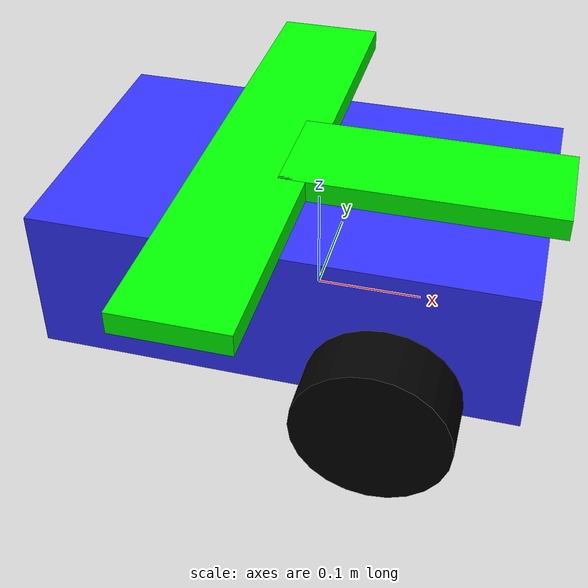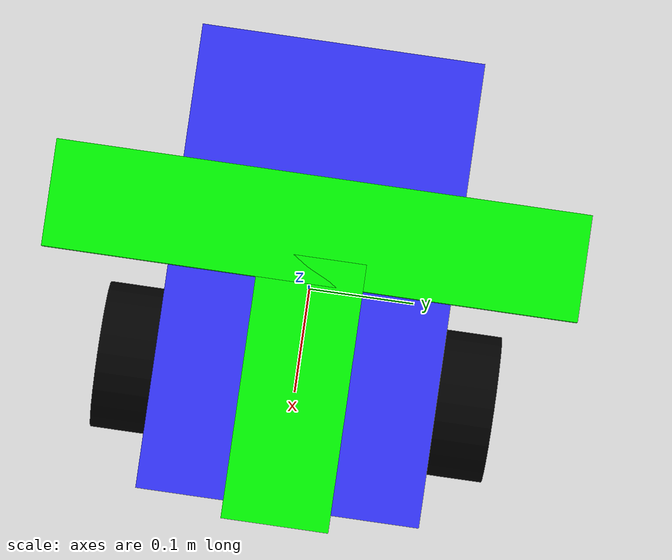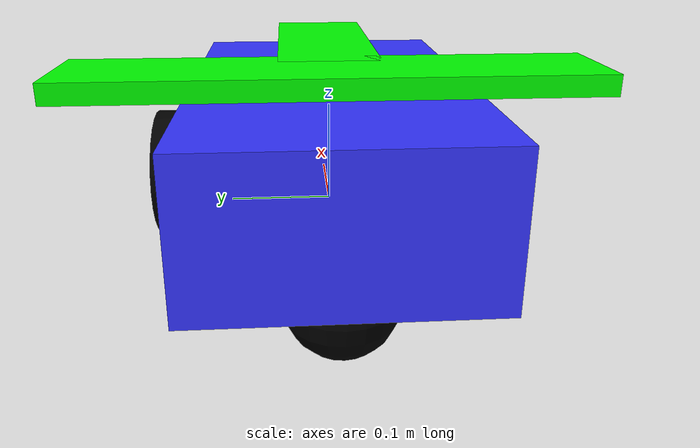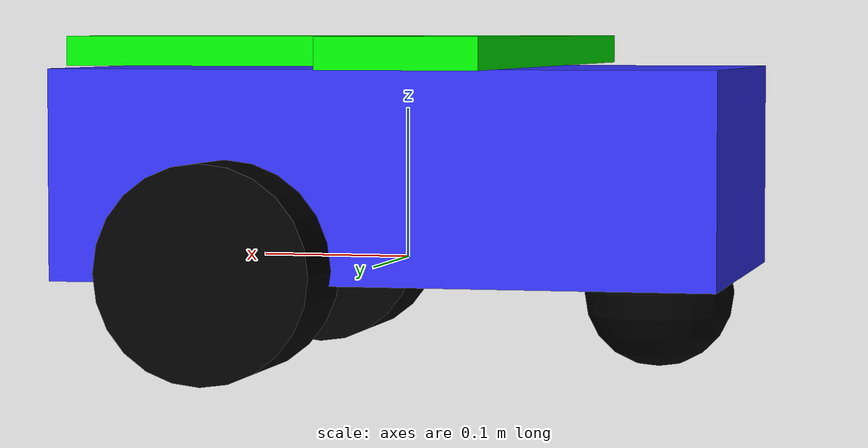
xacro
<?xml version="1.0" ?>
<robot name='robot' xmlns:xacro="http://ros.org/wiki/xacro">

    <xacro:include filename="$(find robot_description)/urdf/gazebo.urdf.xacro" />
    <!--xacro:include filename="$(find robot_description)/urdf/lidar.urdf.xacro" /-->
    <!--xacro:include filename="$(find robot_description)/urdf/depth.urdf.xacro" /-->

    <xacro:property name="chassis_length" value="0.435"/>
    <xacro:property name="chassis_width" value="0.265"/>
    <xacro:property name="chassis_height" value="0.138"/>
    <xacro:property name="wheel_radius" value="0.07"/>
    <xacro:property name="wheel_thickness" value="0.08"/>
    <xacro:property name="wheel_mass" value="0.05"/>
    <xacro:property name="wheel_offset_x" value="0.226"/>
    <xacro:property name="wheel_offset_y" value="0.1485"/>
    <xacro:property name="wheel_offset_z" value="0.01"/>
    <xacro:property name="caster_wheel_radius" value="0.05"/>
    <xacro:property name="caster_wheel_mass" value="0.01"/>
    <xacro:property name="caster_wheel_offset_x" value="0.075"/>
    <xacro:property name="caster_wheel_offset_z" value="${wheel_offset_z - wheel_radius + caster_wheel_radius}"/>
    <xacro:property name="mass" value="1.0"/>

    <material name="white">
        <color rgba="1 1 1 1" />
    </material>

    <material name="orange">
        <color rgba="1 0.3 0.1 1"/>
    </material>

    <material name="blue">
        <color rgba="0.2 0.2 1 1"/>
    </material>

    <material name="black">
        <color rgba="0 0 0 1"/>
    </material>

    <material name="red">
        <color rgba="1 0 0 1"/>
    </material>

    <material name="yellow">
        <color rgba="1 1 0 1"/>
    </material>

    <link name="base_link">
    </link>

    <link name="base_footprint">
    </link>

    <joint name="base_footprint_joint" type="fixed">
        <parent link="base_link"/>
        <child link="base_footprint"/>
        <origin xyz="0 0 -0.138" rpy="0 0 0"/>
    </joint>

    <joint name="chassis_joint" type="fixed">
        <parent link="base_link"/>
        <child link="chassis"/>
        <origin xyz="${-wheel_offset_x} 0 ${-wheel_offset_z}"/>
    </joint>

    <link name='chassis'>

    <inertial>
        <origin xyz="${chassis_length/2} 0 ${chassis_height/2}" rpy="0 0 0"/>
        <mass value="${mass}" />
        <inertia ixx="${(1/12) * mass * (chassis_width*chassis_width+chassis_height*chassis_height)}" ixy="0.0" ixz="0.0"
                 iyy="${(1/12) * mass * (chassis_length*chassis_length+chassis_height*chassis_height)}" iyz="0.0"
                 izz="${(1/12) * mass * (chassis_length*chassis_length+chassis_width*chassis_width)}" />
    </inertial>
    <visual>
        <origin xyz="${chassis_length/2} 0 ${chassis_height/2}"/>
        <geometry>
            <box size="${chassis_length} ${chassis_width} ${chassis_height}"/>
        </geometry>
        <material name="blue"/>
    </visual>
    <collision>
        <origin xyz="${chassis_length/2} 0 ${chassis_height/2}"/>
        <geometry>
            <box size="${chassis_length} ${chassis_width} ${chassis_height}"/>
        </geometry>
    </collision>
    </link>

    <gazebo reference="chassis">
        <material>Gazebo/Orange</material>
    </gazebo>

    <joint name="left_wheel_joint" type="continuous">
        <parent link="base_link"/>
        <child link="left_wheel"/>
        <origin xyz="0.09 ${wheel_offset_y} 0" rpy="-${pi/2} 0 0" />
        <axis xyz="0 0 1"/>
    </joint>

    <link name="left_wheel">
        <visual>
            <geometry>
                <cylinder radius="${wheel_radius}" length="${wheel_thickness}"/>
            </geometry>
            <material name="black"/>
        </visual>
        <collision>
            <geometry>
                <sphere radius="${wheel_radius}"/>
            </geometry>
        </collision>
        <inertial>
            <origin xyz="0 0 0" rpy="0 0 0"/>
            <mass value="${wheel_mass}" />
            <inertia ixx="${(1/12) * wheel_mass * (3*wheel_radius*wheel_radius + wheel_thickness*wheel_thickness)}" ixy="0.0" ixz="0.0"
                     iyy="${(1/12) * wheel_mass * (3*wheel_radius*wheel_radius + wheel_thickness*wheel_thickness)}" iyz="0.0"
                     izz="${(1/2) * wheel_mass * (wheel_radius*wheel_radius)}" />
        </inertial>
    </link>

    <gazebo reference="left_wheel">
        <material>Gazebo/Blue</material>
    </gazebo>

    <joint name="right_wheel_joint" type="continuous">
        <parent link="base_link"/>
        <child link="right_wheel"/>
        <origin xyz="0.09 ${-wheel_offset_y} 0" rpy="${pi/2} 0 0" />
        <axis xyz="0 0 -1"/>
    </joint>

    <link name="right_wheel">
        <visual>
            <geometry>
                <cylinder radius="${wheel_radius}" length="${wheel_thickness}"/>
            </geometry>
            <material name="black"/>
        </visual>
        <collision>
            <geometry>
                <sphere radius="${wheel_radius}"/>
            </geometry>
        </collision>
        <inertial>
            <origin xyz="0 0 0" rpy="0 0 0"/>
            <mass value="${wheel_mass}" />
            <inertia ixx="${(1/12) * wheel_mass * (3*wheel_radius*wheel_radius + wheel_thickness*wheel_thickness)}" ixy="0.0" ixz="0.0"
                     iyy="${(1/12) * wheel_mass * (3*wheel_radius*wheel_radius + wheel_thickness*wheel_thickness)}" iyz="0.0"
                     izz="${(1/2) * wheel_mass * (wheel_radius*wheel_radius)}" />
        </inertial>
    </link>

    <gazebo reference="right_wheel">
        <material>Gazebo/Blue</material>
    </gazebo>

    <joint name="caster_wheel_joint" type="fixed">
        <parent link="chassis"/>
        <child link="caster_wheel"/>
        <origin xyz="${caster_wheel_offset_x - 0.02} 0 ${caster_wheel_offset_z}"/>
    </joint>

    <link name="caster_wheel">
        <visual>
            <geometry>
                <sphere radius="${caster_wheel_radius}"/>
            </geometry>
            <material name="black"/>
        </visual>
        <collision>
            <geometry>
                <sphere radius="${caster_wheel_radius}"/>
            </geometry>
        </collision>
        <inertial>
            <origin xyz="0 0 0" rpy="0 0 0"/>
            <mass value="${caster_wheel_mass}" />
            <inertia ixx="${(2/5) * caster_wheel_mass * (caster_wheel_radius*caster_wheel_radius)}" ixy="0.0" ixz="0.0"
                     iyy="${(2/5) * caster_wheel_mass * (caster_wheel_radius*caster_wheel_radius)}" iyz="0.0"
                     izz="${(2/5) * caster_wheel_mass * (caster_wheel_radius*caster_wheel_radius)}" />
        </inertial>
    </link>

    <gazebo reference="caster_wheel">
        <material>Gazebo/White</material>
        <mu1 value="0.001"/>
        <mu2 value="0.001"/>
    </gazebo>

	<!-- I AM SPEED start -->
	  <!-- T start -->
	  <!-- Rectangle on the top of base_link -->
	  <link name="head_of_T">
	    <visual>
	      <geometry>
		<box size="0.1 0.5 0.02"/> <!-- Размеры прямоугольника (высота, ширина, длина) -->
	      </geometry>
	      <material name="green">
		<color rgba="0.0 1.0 0 1.0"/>
	      </material>
	    </visual>

	    <collision>
	      <geometry>
		<box size="0.1 0.5 0.02"/> <!-- Размеры прямоугольника для коллизий -->
	      </geometry>
	    </collision>

	    <!-- Определение инерции прямоугольника -->
	    <inertial>
	      <origin xyz="0 0 0" rpy="0 0 0"/>
	      <mass value="0.1"/> <!-- Масса прямоугольника -->
	      <inertia ixx="0.001" ixy="0.0" ixz="0.0" iyy="0.001" iyz="0.0" izz="0.001"/> <!-- Моменты инерции -->
	    </inertial>
	  </link>

	  <!-- Joint to connect top_rectangle_link to base_link -->
	  <joint name="head_of_T_joint" type="fixed">
	    <parent link="base_link"/>
	    <child link="head_of_T"/>
	    <origin xyz="-0.05 0.0 ${chassis_height/2 + 0.07}" rpy="0 0 0"/> <!-- Высота прямоугольника относительно base_link -->
	  </joint>

	    <!-- Rectangle at a 90 degree -->
	  <link name="angled_rectangle_link_1">
	    <visual>
	      <geometry>
		<box size="0.25 0.1 0.02"/> <!-- Размеры прямоугольника (высота, ширина, длина) -->
	      </geometry>
	      <material name="green">
		<color rgba="0 1.0 0 1.0"/>
	      </material>
	    </visual>

	    <collision>
	      <geometry>
		<box size="0.25 0.1 0.02"/> <!-- Размеры прямоугольника для коллизий -->
	      </geometry>
	    </collision>

	    <!-- Определение инерции прямоугольника -->
	    <inertial>
	      <origin xyz="0 0 0" rpy="0 0 0"/>
	      <mass value="0.1"/> <!-- Масса прямоугольника -->
	      <inertia ixx="0.001" ixy="0.0" ixz="0.0" iyy="0.001" iyz="0.0" izz="0.001"/> <!-- Моменты инерции -->
	    </inertial>
	  </link>

	  <!-- Joint to connect angled_rectangle_link_1 to base_link at a 45-degree angle -->
	  <joint name="angled_rectangle_joint_1" type="fixed">
	    <parent link="base_link"/>
	    <child link="angled_rectangle_link_1"/>
	    <origin xyz="0.1 0 ${chassis_height/2 + 0.07}" rpy="0 0 0"/>
	    <axis xyz="1 0 0"/> <!-- Ось вращения вдоль z-оси (вертикальная ось) -->
	  </joint>

	  <!-- T end -->

	  <!-- I AM SPEED end-->

</robot>
